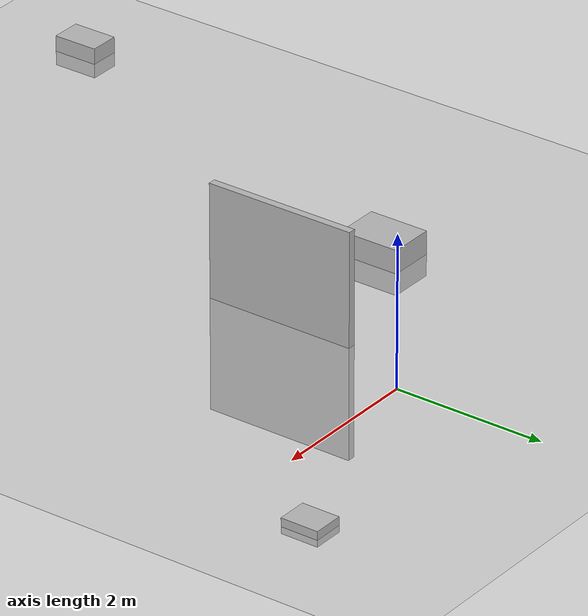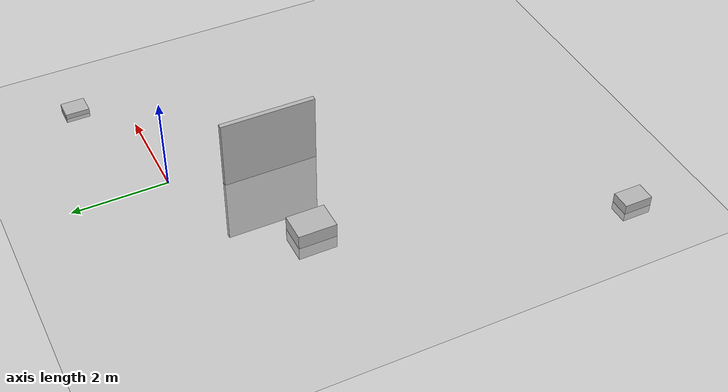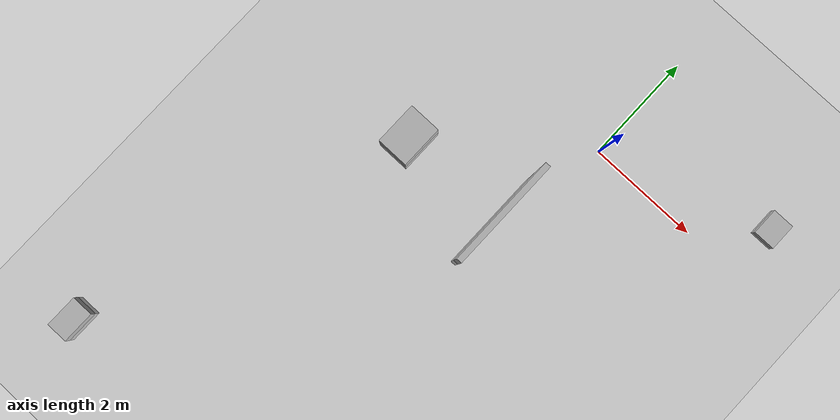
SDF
<sdf version="1.5">
  <world name="default">
    <gui>
      <camera name="user_camera">
        <pose>0 -18 8.0 0 0.523 1.5707</pose>
      </camera>
    </gui>
    <light name="sun" type="directional">
      <cast_shadows>1</cast_shadows>
      <pose>0 0 10 0 -0 0</pose>
      <diffuse>0.8 0.8 0.8 1</diffuse>
      <specular>0.2 0.2 0.2 1</specular>
      <attenuation>
        <range>1000</range>
        <constant>0.9</constant>
        <linear>0.01</linear>
        <quadratic>0.001</quadratic>
      </attenuation>
      <direction>0 0.5 -0.9</direction>
    </light>

    <light name="point_light" type="point">
      <pose>0 -0.377195 6.59868 0 -0 0</pose>
      <diffuse>0.784314 0.784314 0.784314 1</diffuse>
      <specular>0.0980392 0.0980392 0.0980392 1</specular>
      <attenuation>
        <range>50</range>
        <constant>0.8</constant>
        <linear>0</linear>
        <quadratic>0.001</quadratic>
      </attenuation>
      <cast_shadows>0</cast_shadows>
      <direction>0 0 -1</direction>
    </light>

    <include>
      <uri>model://ground_plane</uri>
    </include>

     <model name="box1">
      <pose>3 1 0 0 0 0</pose>
      <link name="link">
        <collision name="collision">
          <geometry>
            <box>
              <size>1 1 1</size>
            </box>
          </geometry>
        </collision>

        <visual name="visual">
          <geometry>
            <box>
              <size>0.4 0.5 0.2</size>
            </box>
          </geometry>
        </visual>
      </link>

      <plugin name="push_animate_1" filename="libanimated_box_1.so"/>
    </model>

    <model name="box2">
      <pose> -2.5 -2 0 0 0 0</pose>
      <link name="link">
        <collision name="collision">
          <geometry>
            <box>
              <size>0.6 0.8 0.6</size>
            </box>
          </geometry>
        </collision>

        <visual name="visual">
          <geometry>
            <box>
              <size>0.6 0.8 0.6</size>
            </box>
          </geometry>
        </visual>
      </link>

      <plugin name="push_animate_2" filename="libanimated_box_2.so"/>
    </model>

    <model name="box3">
      <pose>-0.5 -2 0 0 0 0</pose>
      <link name="link">
        <collision name="collision">
          <geometry>
            <box>
              <size>0.1 2 3</size>
            </box>
          </geometry>
        </collision>

        <visual name="visual">
          <geometry>
            <box>
              <size>0.1 2 3</size>
            </box>
          </geometry>
        </visual>
      </link>

      <plugin name="push_animate_3" filename="libanimated_box_3.so"/>
    </model>

   <model name="box4">
      <pose>-4.5 -8 0 0 0 0</pose>
      <link name="link">
        <collision name="collision">
          <geometry>
            <box>
              <size>0.4 0.6 0.4</size>
            </box>
          </geometry>
        </collision>

        <visual name="visual">
          <geometry>
            <box>
              <size>0.4 0.6 0.4</size>
            </box>
          </geometry>
        </visual>
      </link>

      <plugin name="push_animate_4" filename="libanimated_box_4.so"/>
    </model>

  </world>
</sdf>
